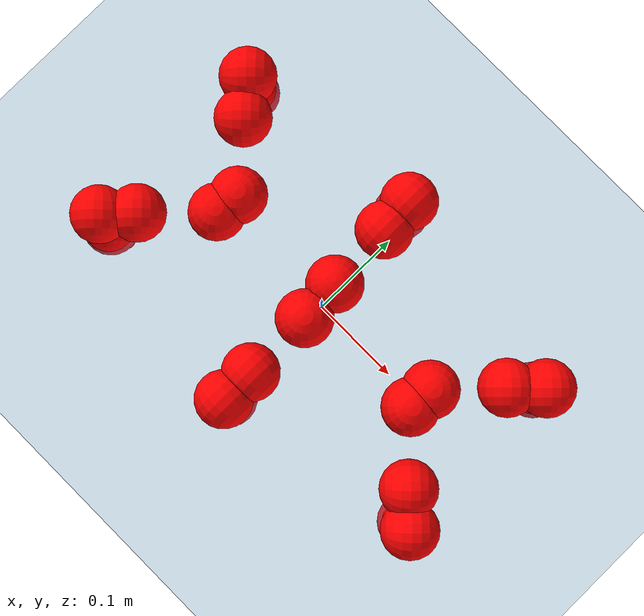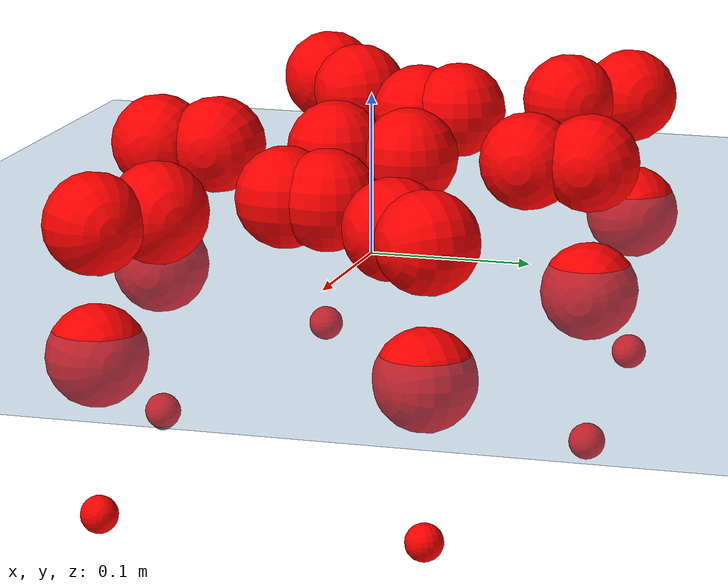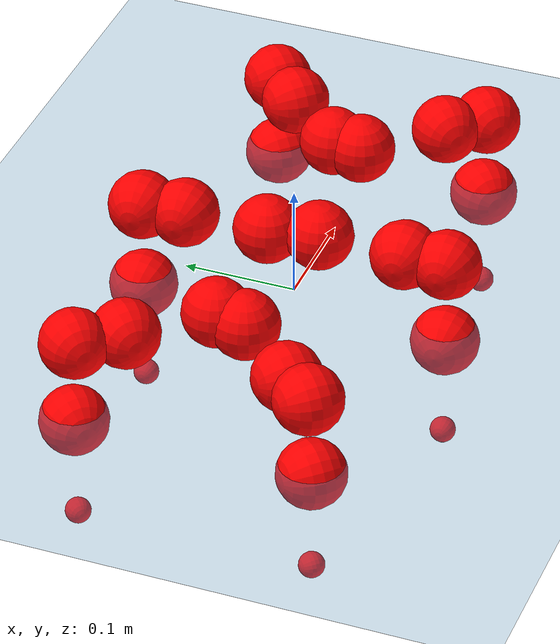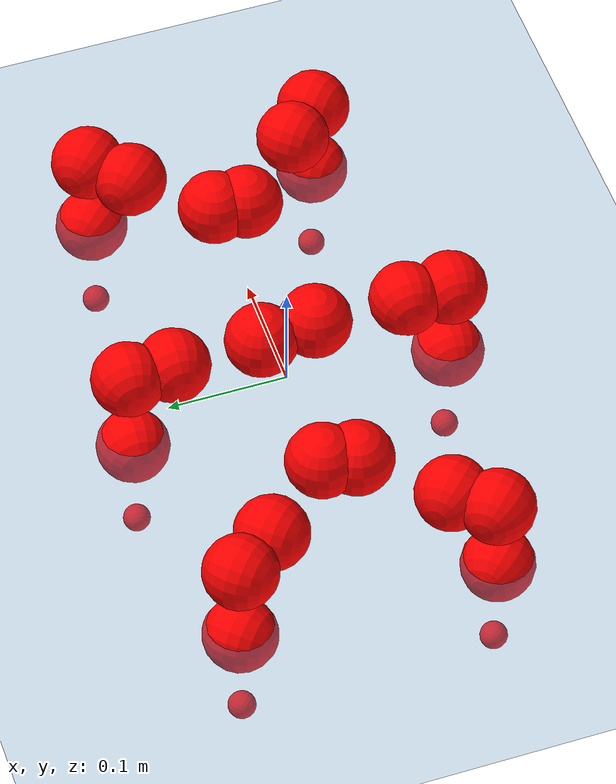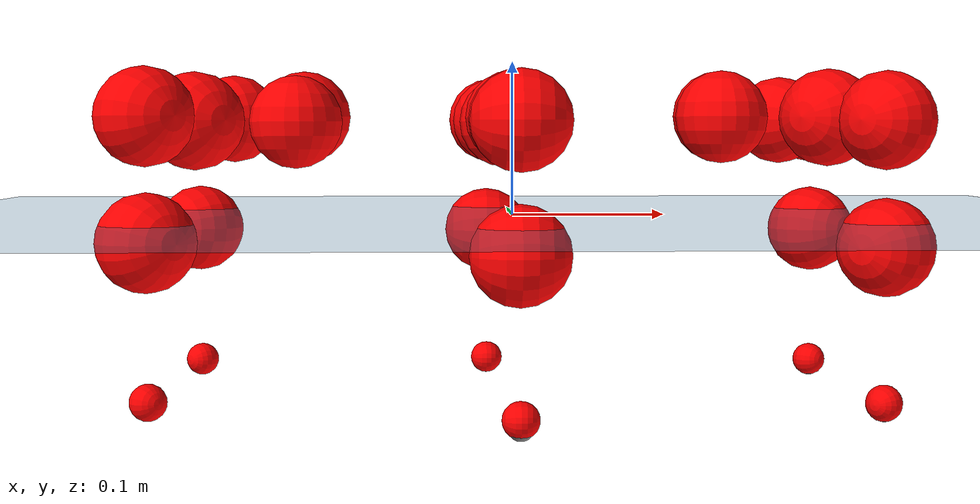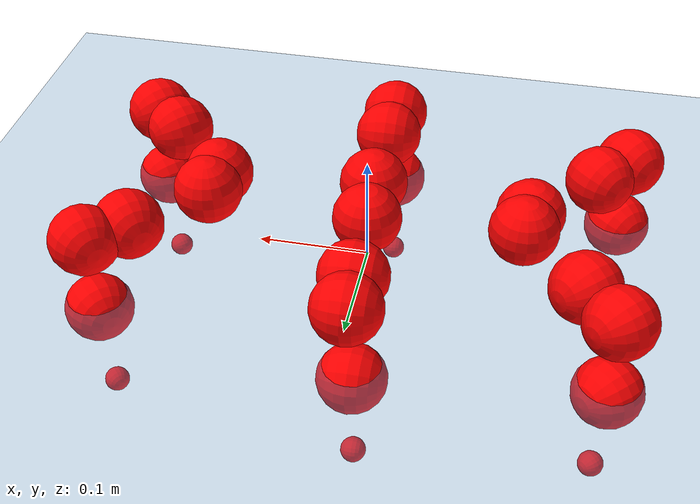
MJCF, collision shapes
<mujoco model="Golem">
  <compiler angle="radian" assetdir="assets" balanceinertia="true" inertiafromgeom="false"/>

  <option timestep="0.005" density="1.2" viscosity="2e-05"/>

  <size nkey="1"/>

  <visual>
    <quality shadowsize="8192"/>
    <map shadowclip="0.5"/>
  </visual>

  <default>
    <default class="/">
      <joint armature="0.01" damping="0.01" frictionloss="0.01"/>
      <geom contype="0" conaffinity="0" group="1" solref="-1000 -80"/>
      <site size="0.01 0.005 0.005" group="5"/>
      <general forcelimited="true" biastype="affine" gainprm="25" biasprm="0 -25 -0.5"/>
      <default class="visual">
        <geom type="mesh" group="2"/>
      </default>
      <default class="collision">
        <geom group="3"/>
      </default>
      <default class="foot">
        <geom size="0.01 0 0" condim="6" group="4" priority="1" solimp="0.015 1 0.01"/>
      </default>
      <default class="reward_collision_sphere">
        <geom group="5" rgba="1 0 0 1"/>
      </default>
    </default>
  </default>

  <asset>
    <texture type="skybox" colorspace="auto" name="//unnamed_texture_0" builtin="gradient" rgb1="0.95 0.95 0.95" rgb2="0.95 0.95 0.95" width="100" height="600"/>
    <texture type="2d" colorspace="auto" name="texplane" builtin="checker" rgb1="0.345 0.575 0.748" rgb2="0.345 0.575 0.748" markrgb="1 1 1" width="512" height="512"/>
    <material name="MatPlane" class="/" texture="texplane" texuniform="true" texrepeat="2 2" specular="0.9"/>
    <mesh name="body" class="/" file="body.stl" scale="0.001 0.001 0.001"/>
    <mesh name="coxa" class="/" file="coxa.stl" scale="0.001 0.001 0.001"/>
    <mesh name="femur" class="/" file="femur.stl" scale="0.001 0.001 0.001"/>
    <mesh name="tibia" class="/" file="tibia.stl" scale="0.001 0.001 0.001"/>
    <mesh name="tarsus" class="/" file="tarsus.stl" scale="0.001 0.001 0.001"/>
  </asset>

  <worldbody>
    <geom name="floor" class="/" size="100 100 0.125" type="plane" group="0" material="MatPlane"/>
    <light name="toplight_shadow" class="/" pos="0 0 5" dir="0.0990148 0.0990148 -0.990148" type="directional" ambient="0.04 0.04 0.04" diffuse="0.55 0.55 0.55" specular="0.12 0.12 0.12"/>
    <light name="toplight_fill" class="/" pos="0 0 5" dir="0.0990148 0.0990148 -0.990148" type="directional" castshadow="false" ambient="0.04 0.04 0.04" diffuse="0.3 0.3 0.3" specular="0.08 0.08 0.08"/>
    <body name="trunk" pos="-0.00032097 0.00033531 -0.000802641" quat="0.999999 -0.00103647 -0.000532368 0.000376978">
      <inertial pos="0.000155092 -0.001193 -0.00254495" quat="1 -0.000384038 -0.000777024 0.000297713" mass="1.62543" diaginertia="0.0053967 7.0833e-05 0.00976497"/>
      <joint name="//unnamed_joint_0" type="free"/>
      <geom name="//unnamed_geom_1" class="/" pos="0 0 0.0638536" quat="1 0 0 0" type="mesh" rgba="0.9 0.9 0.9 1" mesh="body"/>
      <site name="imu" class="/" pos="0.128379 -0.00907673 0.101089" size="0.0075281"/>
      <camera name="track" class="/" pos="0 -0.748101 0" quat="0.707107 0.707107 0 0" mode="trackcom"/>
      <camera name="ego_camera" class="/" pos="0.115267 0 0.0997712" quat="-0.5 -0.5 0.5 0.5"/>
      <body name="coxa_RR" pos="-0.159099 -0.029762 0.0617606" quat="0.382612 0.000584269 -0.00108785 -0.923908">
        <inertial pos="0.000371175 -0.000402868 0.00303151" quat="0.99994 -0.00833223 0.00408961 0.00573551" mass="0.0892406" diaginertia="0.0056864 7.61853e-05 0.0101579"/>
        <joint name="coxa_joint_RR" class="/" pos="0 0 0" axis="-0.00208138 -0.000456543 -0.999998" range="-3.19134 3.08425" armature="0.00752919" damping="0.0146294" frictionloss="0.00823714"/>
        <geom name="//unnamed_geom_2" class="/" type="mesh" rgba="0.2 0.2 0.2 1" mesh="coxa"/>
        <geom name="//unnamed_geom_3" class="reward_collision_sphere" size="0.0301124" pos="-0.0266 0 0"/>
        <body name="femur_RR" pos="0.0543078 0.00142791 0.000313451" quat="0.499793 -0.500299 0.499606 0.500302">
          <inertial pos="0.000452582 -0.000637255 0.00106646" quat="0.999999 0.00124656 0.000659236 0.000128882" mass="0.08518" diaginertia="0.00553863 7.43361e-05 0.00988346"/>
          <joint name="femur_joint_RR" class="/" pos="0 0 0" axis="-0.0058181 -0.00391197 -0.999975" range="-3.08515 3.14449" armature="0.00644544" damping="0" frictionloss="0.00763304"/>
          <geom name="//unnamed_geom_4" class="/" type="mesh" rgba="0.9 0.9 0.9 1" mesh="femur"/>
          <geom name="//unnamed_geom_5" class="reward_collision_sphere" size="0.0301124"/>
          <body name="tibia_RR" pos="-0.00252859 -0.0379863 0.00191083" quat="0.000990397 0.999999 -0.000234936 -0.000645736">
            <inertial pos="0.00275589 0.00204959 -0.000774808" quat="0.999998 0.000476164 0.000613466 -0.00173769" mass="0.0882569" diaginertia="0.0054937 7.35381e-05 0.00955807"/>
            <joint name="tibia_joint_RR" class="/" pos="0 0 0" axis="0.000135852 0.013283 0.999912" range="-3.08586 3.14292" armature="0.00657829" damping="0" frictionloss="0.00792868"/>
            <geom name="//unnamed_geom_6" class="/" type="mesh" rgba="0.2 0.2 0.2 1" mesh="tibia"/>
            <geom name="//unnamed_geom_7" class="reward_collision_sphere" size="0.0301124"/>
            <body name="tarsus_RR" pos="0.0751342 0.00161965 -0.00218484" quat="1 -0.000160821 7.39762e-05 0.000114635">
              <inertial pos="0.0514878 0.0013476 -0.00138067" quat="0.500578 0.49813 0.499705 0.50158" mass="0.0882224" diaginertia="0.00567456 7.30144e-05 0.0103393"/>
              <joint name="tarsus_joint_RR" class="/" pos="0 0 0" axis="-0.00527855 0.0114405 0.999921" range="-3.16088 3.15769" armature="0.00785949" damping="0" frictionloss="0.00712888"/>
              <geom name="//unnamed_geom_8" class="/" type="mesh" rgba="0.9 0.9 0.9 1" mesh="tarsus"/>
              <geom name="foot_1" class="foot" size="0.00741293" pos="0.0993066 0 0" quat="0 -0.707107 0 0.707107"/>
              <geom name="//unnamed_geom_10" class="reward_collision_sphere" size="0.0301124"/>
              <geom name="//unnamed_geom_11" class="reward_collision_sphere" size="0.0112921" pos="0.0953166 0 0"/>
              <site name="foot_1" class="foot" pos="0.0993066 0 0" quat="0 -0.707107 0 0.707107" size="0.0075281"/>
            </body>
          </body>
        </body>
      </body>
      <body name="coxa_RM" pos="-0.000676891 -0.0505513 0.0644801" quat="0.707519 0.0008639 0.000956605 -0.706693">
        <inertial pos="0.00149461 -0.00257675 0.00155644" quat="0.999998 -0.000874277 -0.00165768 0.000314779" mass="0.0829523" diaginertia="0.00533292 7.35245e-05 0.00988532"/>
        <joint name="coxa_joint_RM" class="/" pos="0 0 0" axis="-0.0123512 0.00685809 -0.9999" range="-3.13208 3.192" armature="0.00845899" damping="0" frictionloss="0.0066183"/>
        <geom name="//unnamed_geom_12" class="/" type="mesh" rgba="0.2 0.2 0.2 1" mesh="coxa"/>
        <geom name="//unnamed_geom_13" class="reward_collision_sphere" size="0.0301124" pos="-0.0266 0 0"/>
        <body name="femur_RM" pos="0.0500541 0.000463837 -0.00160506" quat="0.499995 -0.499993 0.500001 0.50001">
          <inertial pos="0.00209541 -0.000950155 -0.000313461" quat="0.999992 0.000230801 -0.00300531 -0.0027643" mass="0.0889852" diaginertia="0.00546735 7.4833e-05 0.0100944"/>
          <joint name="femur_joint_RM" class="/" pos="0 0 0" axis="8.9679e-05 0.000981196 -1" range="-3.16589 3.12904" armature="0.00755243" damping="0.0140546" frictionloss="0.00838405"/>
          <geom name="//unnamed_geom_14" class="/" type="mesh" rgba="0.9 0.9 0.9 1" mesh="femur"/>
          <geom name="//unnamed_geom_15" class="reward_collision_sphere" size="0.0301124"/>
          <body name="tibia_RM" pos="0.00077018 -0.0379636 5.22139e-05" quat="0.000434878 1 -7.29457e-05 -0.000230194">
            <inertial pos="0.000540463 -0.00248857 -0.00278017" quat="0.999907 0.00231864 0.0105524 -0.00828122" mass="0.0858562" diaginertia="0.00570312 7.36868e-05 0.0102852"/>
            <joint name="tibia_joint_RM" class="/" pos="0 0 0" axis="0.00101172 0.00246698 0.999996" range="-3.16029 3.12381" armature="0.00846838" damping="0.00841003" frictionloss="0.0084855"/>
            <geom name="//unnamed_geom_16" class="/" type="mesh" rgba="0.2 0.2 0.2 1" mesh="tibia"/>
            <geom name="//unnamed_geom_17" class="reward_collision_sphere" size="0.0301124"/>
            <body name="tarsus_RM" pos="0.0782828 0.00021571 0.000482474" quat="1 -0.00029827 9.50804e-05 5.73512e-05">
              <inertial pos="0.0557 0.000232226 0.000689054" quat="0.503874 0.50714 0.492933 0.49592" mass="0.0841852" diaginertia="0.00555947 7.38355e-05 0.00960902"/>
              <joint name="tarsus_joint_RM" class="/" pos="0 0 0" axis="-0.000267814 0.000596842 1" range="-3.08602 3.16414" armature="0.00851239" damping="0.0047081" frictionloss="0.00757286"/>
              <geom name="//unnamed_geom_18" class="/" type="mesh" rgba="0.9 0.9 0.9 1" mesh="tarsus"/>
              <geom name="foot_2" class="foot" size="0.00833028" pos="0.0993066 0 0" quat="0 -0.707107 0 0.707107"/>
              <geom name="//unnamed_geom_20" class="reward_collision_sphere" size="0.0301124"/>
              <geom name="//unnamed_geom_21" class="reward_collision_sphere" size="0.0112921" pos="0.0953166 0 0"/>
              <site name="foot_2" class="foot" pos="0.0993066 0 0" quat="0 -0.707107 0 0.707107" size="0.0075281"/>
            </body>
          </body>
        </body>
      </body>
      <body name="coxa_RF" pos="0.155675 -0.0301221 0.0648693" quat="0.923801 -0.000178346 0.000288202 -0.382872">
        <inertial pos="-0.00225849 -0.00240861 0.00253781" quat="0.999927 -0.00161513 0.00982514 0.00687353" mass="0.0854945" diaginertia="0.00562857 7.21044e-05 0.00984686"/>
        <joint name="coxa_joint_RF" class="/" pos="0 0 0" axis="-0.00204421 -0.000849309 -0.999998" stiffness="0.000139894" range="-3.1543 3.19287" armature="0.00675814" damping="0.0022059" frictionloss="0.00787738"/>
        <geom name="//unnamed_geom_22" class="/" type="mesh" rgba="0.2 0.2 0.2 1" mesh="coxa"/>
        <geom name="//unnamed_geom_23" class="reward_collision_sphere" size="0.0301124" pos="-0.0266 0 0"/>
        <body name="femur_RF" pos="0.0547956 -0.00172852 -0.000901327" quat="0.49971 -0.500481 0.500735 0.499073">
          <inertial pos="0.000155681 -0.00272014 0.00280609" quat="0.999911 0.0121211 -0.00554746 0.000728072" mass="0.0857631" diaginertia="0.00531597 7.04808e-05 0.0099612"/>
          <joint name="femur_joint_RF" class="/" pos="0 0 0" axis="0.00016204 0.000517994 -1" range="-3.09292 3.13738" armature="0.00726045" damping="0" frictionloss="0.0065024"/>
          <geom name="//unnamed_geom_24" class="/" type="mesh" rgba="0.9 0.9 0.9 1" mesh="femur"/>
          <geom name="//unnamed_geom_25" class="reward_collision_sphere" size="0.0301124"/>
          <body name="tibia_RF" pos="0.00195575 -0.0407266 0.00126366" quat="-0.00115057 0.999999 0.00045365 0.000442742">
            <inertial pos="-0.00021527 0.00202941 -0.000428229" quat="0.999935 0.0101128 0.00520224 0.000140691" mass="0.0864553" diaginertia="0.00556137 7.35241e-05 0.0100654"/>
            <joint name="tibia_joint_RF" class="/" pos="0 0 0" axis="-0.00655841 0.0106951 0.999921" range="-3.11942 3.12698" armature="0.00749836" damping="0.00087024" frictionloss="0.00756689"/>
            <geom name="//unnamed_geom_26" class="/" type="mesh" rgba="0.2 0.2 0.2 1" mesh="tibia"/>
            <geom name="//unnamed_geom_27" class="reward_collision_sphere" size="0.0301124"/>
            <body name="tarsus_RF" pos="0.077165 -0.000234661 -0.00119804" quat="0.999999 -0.00130846 0.000297874 -0.000420767">
              <inertial pos="0.0505193 0.000517125 0.00249809" quat="0.499933 0.510019 0.496591 0.493301" mass="0.0806935" diaginertia="0.00547565 7.16816e-05 0.00954895"/>
              <joint name="tarsus_joint_RF" class="/" pos="0 0 0" axis="-0.00118441 -0.0147824 0.99989" range="-3.08652 3.12357" armature="0.00756073" damping="0.000926596" frictionloss="0.00838009"/>
              <geom name="//unnamed_geom_28" class="/" type="mesh" rgba="0.9 0.9 0.9 1" mesh="tarsus"/>
              <geom name="foot_3" class="foot" size="0.00739083" pos="0.0993066 0 0" quat="0 -0.707107 0 0.707107"/>
              <geom name="//unnamed_geom_30" class="reward_collision_sphere" size="0.0301124"/>
              <geom name="//unnamed_geom_31" class="reward_collision_sphere" size="0.0112921" pos="0.0953166 0 0"/>
              <site name="foot_3" class="foot" pos="0.0993066 0 0" quat="0 -0.707107 0 0.707107" size="0.0075281"/>
            </body>
          </body>
        </body>
      </body>
      <body name="coxa_LR" pos="-0.155447 0.0349108 0.06501" quat="0.382317 -0.00130484 0.000521683 0.92403">
        <inertial pos="0.00306359 0.000261019 -0.0014001" quat="0.999916 0.00858371 -0.00748971 -0.00610198" mass="0.0851834" diaginertia="0.00539217 7.32882e-05 0.00989412"/>
        <joint name="coxa_joint_LR" class="/" pos="0 0 0" axis="0.0014687 0.0112298 -0.999936" range="-3.11839 3.12785" armature="0.00732895" damping="0.00424732" frictionloss="0.00732312"/>
        <geom name="//unnamed_geom_32" class="/" type="mesh" rgba="0.2 0.2 0.2 1" mesh="coxa"/>
        <geom name="//unnamed_geom_33" class="reward_collision_sphere" size="0.0301124" pos="-0.0266 0 0"/>
        <body name="femur_LR" pos="0.0533189 -0.00395712 -0.000300041" quat="0.499461 -0.499448 0.499899 0.50119">
          <inertial pos="-6.26436e-05 0.000419738 -0.00029513" quat="0.999996 -0.00144087 -0.000811153 0.00220272" mass="0.0870221" diaginertia="0.00551897 7.39216e-05 0.0100871"/>
          <joint name="femur_joint_LR" class="/" pos="0 0 0" axis="0.000717067 -0.00072481 0.999999" range="-3.11524 3.18727" armature="0.00775162" damping="0" frictionloss="0.00848448"/>
          <geom name="//unnamed_geom_34" class="/" type="mesh" rgba="0.9 0.9 0.9 1" mesh="femur"/>
          <geom name="//unnamed_geom_35" class="reward_collision_sphere" size="0.0301124"/>
          <body name="tibia_LR" pos="-0.000220835 -0.0437369 -0.00462077" quat="0.000408458 1 8.79779e-05 -0.000169749">
            <inertial pos="0.000153078 -0.00229133 0.00245508" quat="0.999995 0.00219219 -0.000463164 -0.00220027" mass="0.0848275" diaginertia="0.00555218 7.64182e-05 0.0100318"/>
            <joint name="tibia_joint_LR" class="/" pos="0 0 0" axis="0.0026911 0.00532268 -0.999982" range="-3.14823 3.08395" armature="0.00655871" damping="0.00499662" frictionloss="0.00697775"/>
            <geom name="//unnamed_geom_36" class="/" type="mesh" rgba="0.2 0.2 0.2 1" mesh="tibia"/>
            <geom name="//unnamed_geom_37" class="reward_collision_sphere" size="0.0301124"/>
            <body name="tarsus_LR" pos="0.0779574 0.00294774 -5.24116e-05" quat="1 -0.000190161 -6.79207e-05 0.000369946">
              <inertial pos="0.0534747 -0.000602508 0.000694766" quat="0.501377 0.500073 0.499482 0.499065" mass="0.084121" diaginertia="0.00540227 7.19566e-05 0.00983115"/>
              <joint name="tarsus_joint_LR" class="/" pos="0 0 0" axis="-0.000745415 -0.00239169 -0.999997" range="-3.08512 3.14305" armature="0.00758059" damping="0" frictionloss="0.00714018"/>
              <geom name="//unnamed_geom_38" class="/" type="mesh" rgba="0.9 0.9 0.9 1" mesh="tarsus"/>
              <geom name="foot_4" class="foot" size="0.0067884" pos="0.0993066 0 0" quat="0.707107 0 -0.707107 0"/>
              <geom name="//unnamed_geom_40" class="reward_collision_sphere" size="0.0301124"/>
              <geom name="//unnamed_geom_41" class="reward_collision_sphere" size="0.0112921" pos="0.0953166 0 0"/>
              <site name="foot_4" class="foot" pos="0.0993066 0 0" quat="0.707107 0 -0.707107 0" size="0.0075281"/>
            </body>
          </body>
        </body>
      </body>
      <body name="coxa_LM" pos="-0.00393964 0.0487318 0.0619825" quat="0.706704 -0.000366457 0.00112942 0.707508">
        <inertial pos="-1.78498e-05 4.35083e-06 0.00250563" quat="0.999992 0.00222827 -0.00207817 -0.00240909" mass="0.0878549" diaginertia="0.0058254 7.55707e-05 0.0103012"/>
        <joint name="coxa_joint_LM" class="/" pos="0 0 0" axis="0.000153577 -0.000112383 -1" stiffness="0.00637096" range="-3.1927 3.15831" armature="0.00659828" damping="0.0013047" frictionloss="0.00851229"/>
        <geom name="//unnamed_geom_42" class="/" type="mesh" rgba="0.2 0.2 0.2 1" mesh="coxa"/>
        <geom name="//unnamed_geom_43" class="reward_collision_sphere" size="0.0301124" pos="-0.0266 0 0"/>
        <body name="femur_LM" pos="0.0476544 0.00374433 0.00145619" quat="0.499972 -0.500018 0.499958 0.500051">
          <inertial pos="-0.000240851 -0.00255294 0.000384363" quat="0.999956 0.00487359 0.00770406 0.00202201" mass="0.0800225" diaginertia="0.00532696 7.12562e-05 0.00960025"/>
          <joint name="femur_joint_LM" class="/" pos="0 0 0" axis="-0.00362295 -0.00838154 0.999958" range="-3.1557 3.14976" armature="0.0069958" damping="0.00420267" frictionloss="0.00830892"/>
          <geom name="//unnamed_geom_44" class="/" type="mesh" rgba="0.9 0.9 0.9 1" mesh="femur"/>
          <geom name="//unnamed_geom_45" class="reward_collision_sphere" size="0.0301124"/>
          <body name="tibia_LM" pos="-0.000734062 -0.0383328 0.00250153" quat="0.000144395 1 0.000260661 -0.000234092">
            <inertial pos="-0.00260212 0.000825865 -0.00078463" quat="1 -0.000105773 0.000463241 -1.16868e-05" mass="0.086983" diaginertia="0.00522889 7.27642e-05 0.00968783"/>
            <joint name="tibia_joint_LM" class="/" pos="0 0 0" axis="-0.000707878 0.000366204 -1" range="-3.09041 3.14102" armature="0.00740248" damping="0" frictionloss="0.00689525"/>
            <geom name="//unnamed_geom_46" class="/" type="mesh" rgba="0.2 0.2 0.2 1" mesh="tibia"/>
            <geom name="//unnamed_geom_47" class="reward_collision_sphere" size="0.0301124"/>
            <body name="tarsus_LM" pos="0.0805204 -0.000289579 -0.00311007" quat="1 2.72794e-05 -5.25412e-05 -3.92967e-05">
              <inertial pos="0.0519488 0.000214692 -0.000221126" quat="0.500717 0.496757 0.502043 0.500468" mass="0.0820154" diaginertia="0.00536571 7.23511e-05 0.0100786"/>
              <joint name="tarsus_joint_LM" class="/" pos="0 0 0" axis="-0.00669925 0.00920098 -0.999935" range="-3.14819 3.08988" armature="0.00759695" damping="0.0126109" frictionloss="0.00652698"/>
              <geom name="//unnamed_geom_48" class="/" type="mesh" rgba="0.9 0.9 0.9 1" mesh="tarsus"/>
              <geom name="foot_5" class="foot" size="0.00726401" pos="0.0993066 0 0" quat="0.707107 0 -0.707107 0"/>
              <geom name="//unnamed_geom_50" class="reward_collision_sphere" size="0.0301124"/>
              <geom name="//unnamed_geom_51" class="reward_collision_sphere" size="0.0112921" pos="0.0953166 0 0"/>
              <site name="foot_5" class="foot" pos="0.0993066 0 0" quat="0.707107 0 -0.707107 0" size="0.0075281"/>
            </body>
          </body>
        </body>
      </body>
      <body name="coxa_LF" pos="0.15784 0.0338345 0.0653223" quat="0.923826 -0.000172111 0.000686157 0.382813">
        <inertial pos="0.00130962 -0.00226477 0.000682984" quat="0.999992 0.00136721 -0.000722297 -0.0036226" mass="0.0831449" diaginertia="0.00530019 6.84641e-05 0.00960874"/>
        <joint name="coxa_joint_LF" class="/" pos="0 0 0" axis="-0.00939429 0.00263088 -0.999952" range="-3.18517 3.1348" armature="0.00746655" damping="0" frictionloss="0.00805725"/>
        <geom name="//unnamed_geom_52" class="/" type="mesh" rgba="0.2 0.2 0.2 1" mesh="coxa"/>
        <geom name="//unnamed_geom_53" class="reward_collision_sphere" size="0.0301124" pos="-0.0266 0 0"/>
        <body name="femur_LF" pos="0.0500985 0.00229576 -0.00187258" quat="0.499337 -0.500543 0.499663 0.500456">
          <inertial pos="-0.000653194 6.54572e-05 0.000972283" quat="0.999922 6.42481e-05 -0.00886935 -0.00881643" mass="0.0851009" diaginertia="0.00548143 7.04614e-05 0.00961059"/>
          <joint name="femur_joint_LF" class="/" pos="0 0 0" axis="0.0108561 -0.00519995 0.999928" range="-3.13622 3.11893" armature="0.00770596" damping="0.0093121" frictionloss="0.00662195"/>
          <geom name="//unnamed_geom_54" class="/" type="mesh" rgba="0.9 0.9 0.9 1" mesh="femur"/>
          <geom name="//unnamed_geom_55" class="reward_collision_sphere" size="0.0301124"/>
          <body name="tibia_LF" pos="-0.000767473 -0.0395119 -0.000375006" quat="2.29753e-06 1 3.20415e-06 4.28803e-05">
            <inertial pos="-0.000781361 0.000449738 0.000445568" quat="0.999979 0.00362428 -0.00536919 0.000802082" mass="0.0874325" diaginertia="0.00549243 7.18535e-05 0.00968254"/>
            <joint name="tibia_joint_LF" class="/" pos="0 0 0" axis="0.0084243 -0.00797103 -0.999933" stiffness="0.00356632" range="-3.19111 3.13777" armature="0.00809669" damping="0.0107625" frictionloss="0.00669175"/>
            <geom name="//unnamed_geom_56" class="/" type="mesh" rgba="0.2 0.2 0.2 1" mesh="tibia"/>
            <geom name="//unnamed_geom_57" class="reward_collision_sphere" size="0.0301124"/>
            <body name="tarsus_LF" pos="0.0788235 0.000323073 0.00111056" quat="1 9.74411e-06 -2.51465e-05 -0.000147889">
              <inertial pos="0.0531674 -0.000379206 0.00266341" quat="0.499533 0.499328 0.501249 0.499887" mass="0.0860161" diaginertia="0.00543482 7.2963e-05 0.00974734"/>
              <joint name="tarsus_joint_LF" class="/" pos="0 0 0" axis="0.00877594 0.0118824 -0.999891" stiffness="0.0316977" range="-3.13424 3.17359" armature="0.00736543" damping="0.0233875" frictionloss="0.00716713"/>
              <geom name="//unnamed_geom_58" class="/" type="mesh" rgba="0.9 0.9 0.9 1" mesh="tarsus"/>
              <geom name="foot_6" class="foot" size="0.00741801" pos="0.0993066 0 0" quat="0.707107 0 -0.707107 0"/>
              <geom name="//unnamed_geom_60" class="reward_collision_sphere" size="0.0301124"/>
              <geom name="//unnamed_geom_61" class="reward_collision_sphere" size="0.0112921" pos="0.0953166 0 0"/>
              <site name="foot_6" class="foot" pos="0.0993066 0 0" quat="0.707107 0 -0.707107 0" size="0.0075281"/>
            </body>
          </body>
        </body>
      </body>
    </body>
  </worldbody>

  <contact>
    <pair class="/" geom1="floor" geom2="foot_1" name="//unnamed_contact_0"/>
    <pair class="/" geom1="floor" geom2="foot_2" name="//unnamed_contact_1"/>
    <pair class="/" geom1="floor" geom2="foot_3" name="//unnamed_contact_2"/>
    <pair class="/" geom1="floor" geom2="foot_4" name="//unnamed_contact_3"/>
    <pair class="/" geom1="floor" geom2="foot_5" name="//unnamed_contact_4"/>
    <pair class="/" geom1="floor" geom2="foot_6" name="//unnamed_contact_5"/>
  </contact>

  <actuator>
    <general name="coxa_joint_RR" class="/" joint="coxa_joint_RR" forcerange="-5.99688 5.99688" gainprm="17.2907" biasprm="0 -17.2907 -0.364589"/>
    <general name="femur_joint_RR" class="/" joint="femur_joint_RR" forcerange="-5.65004 5.65004" gainprm="17.2907" biasprm="0 -17.2907 -0.364589"/>
    <general name="tibia_joint_RR" class="/" joint="tibia_joint_RR" forcerange="-5.66153 5.66153" gainprm="17.2907" biasprm="0 -17.2907 -0.364589"/>
    <general name="tarsus_joint_RR" class="/" joint="tarsus_joint_RR" forcerange="-5.28132 5.28132" gainprm="17.2907" biasprm="0 -17.2907 -0.364589"/>
    <general name="coxa_joint_RM" class="/" joint="coxa_joint_RM" forcerange="-6.0054 6.0054" gainprm="17.2907" biasprm="0 -17.2907 -0.364589"/>
    <general name="femur_joint_RM" class="/" joint="femur_joint_RM" forcerange="-6.05181 6.05181" gainprm="17.2907" biasprm="0 -17.2907 -0.364589"/>
    <general name="tibia_joint_RM" class="/" joint="tibia_joint_RM" forcerange="-5.31283 5.31283" gainprm="17.2907" biasprm="0 -17.2907 -0.364589"/>
    <general name="tarsus_joint_RM" class="/" joint="tarsus_joint_RM" forcerange="-6.02403 6.02403" gainprm="17.2907" biasprm="0 -17.2907 -0.364589"/>
    <general name="coxa_joint_RF" class="/" joint="coxa_joint_RF" forcerange="-6.05811 6.05811" gainprm="17.2907" biasprm="0 -17.2907 -0.364589"/>
    <general name="femur_joint_RF" class="/" joint="femur_joint_RF" forcerange="-4.93452 4.93452" gainprm="17.2907" biasprm="0 -17.2907 -0.364589"/>
    <general name="tibia_joint_RF" class="/" joint="tibia_joint_RF" forcerange="-5.36957 5.36957" gainprm="17.2907" biasprm="0 -17.2907 -0.364589"/>
    <general name="tarsus_joint_RF" class="/" joint="tarsus_joint_RF" forcerange="-5.50182 5.50182" gainprm="17.2907" biasprm="0 -17.2907 -0.364589"/>
    <general name="coxa_joint_LR" class="/" joint="coxa_joint_LR" forcerange="-5.75154 5.75154" gainprm="17.2907" biasprm="0 -17.2907 -0.364589"/>
    <general name="femur_joint_LR" class="/" joint="femur_joint_LR" forcerange="-5.02044 5.02044" gainprm="17.2907" biasprm="0 -17.2907 -0.364589"/>
    <general name="tibia_joint_LR" class="/" joint="tibia_joint_LR" forcerange="-5.34182 5.34182" gainprm="17.2907" biasprm="0 -17.2907 -0.364589"/>
    <general name="tarsus_joint_LR" class="/" joint="tarsus_joint_LR" forcerange="-5.68927 5.68927" gainprm="17.2907" biasprm="0 -17.2907 -0.364589"/>
    <general name="coxa_joint_LM" class="/" joint="coxa_joint_LM" forcerange="-5.51222 5.51222" gainprm="17.2907" biasprm="0 -17.2907 -0.364589"/>
    <general name="femur_joint_LM" class="/" joint="femur_joint_LM" forcerange="-5.52479 5.52479" gainprm="17.2907" biasprm="0 -17.2907 -0.364589"/>
    <general name="tibia_joint_LM" class="/" joint="tibia_joint_LM" forcerange="-4.96481 4.96481" gainprm="17.2907" biasprm="0 -17.2907 -0.364589"/>
    <general name="tarsus_joint_LM" class="/" joint="tarsus_joint_LM" forcerange="-5.49943 5.49943" gainprm="17.2907" biasprm="0 -17.2907 -0.364589"/>
    <general name="coxa_joint_LF" class="/" joint="coxa_joint_LF" forcerange="-6.05319 6.05319" gainprm="17.2907" biasprm="0 -17.2907 -0.364589"/>
    <general name="femur_joint_LF" class="/" joint="femur_joint_LF" forcerange="-6.05808 6.05808" gainprm="17.2907" biasprm="0 -17.2907 -0.364589"/>
    <general name="tibia_joint_LF" class="/" joint="tibia_joint_LF" forcerange="-5.38738 5.38738" gainprm="17.2907" biasprm="0 -17.2907 -0.364589"/>
    <general name="tarsus_joint_LF" class="/" joint="tarsus_joint_LF" forcerange="-5.61194 5.61194" gainprm="17.2907" biasprm="0 -17.2907 -0.364589"/>
  </actuator>

  <sensor>
    <gyro site="imu" name="imu_angular_velocity"/>
    <velocimeter site="imu" name="imu_linear_velocity"/>
    <framelinvel objtype="site" objname="foot_1" name="foot_1_global_linear_velocity"/>
    <framelinvel objtype="site" objname="foot_2" name="foot_2_global_linear_velocity"/>
    <framelinvel objtype="site" objname="foot_3" name="foot_3_global_linear_velocity"/>
    <framelinvel objtype="site" objname="foot_4" name="foot_4_global_linear_velocity"/>
    <framelinvel objtype="site" objname="foot_5" name="foot_5_global_linear_velocity"/>
    <framelinvel objtype="site" objname="foot_6" name="foot_6_global_linear_velocity"/>
  </sensor>

  <keyframe>
    <key name="home" qpos="0 0 0.1457 1 0 0 0 0 0 0 0 0 0 0 0 0 0 0 0 0 0 0 0 0 0 0 0 0 0 0 0"/>
  </keyframe>
</mujoco>
